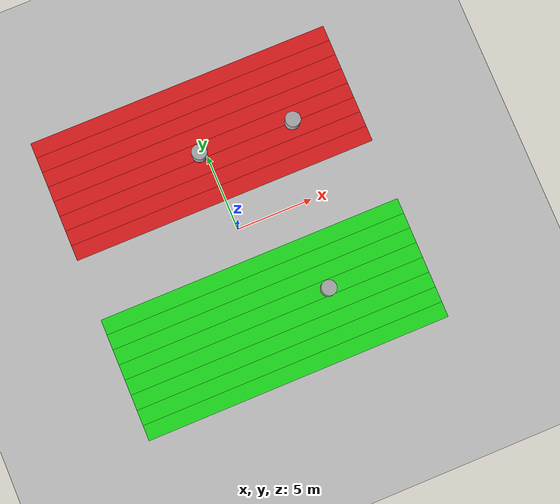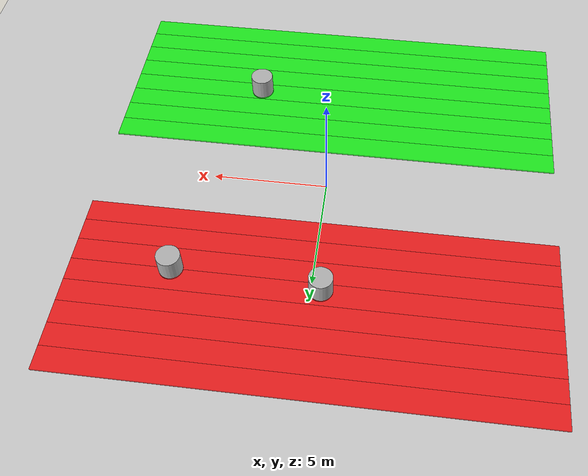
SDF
<sdf version="1.9">
 <world name="car_world">
  <physics name="1ms" type="ignored">
   <max_step_size>0.001</max_step_size>
   <real_time_factor>1</real_time_factor>
   <real_time_update_rate>1000</real_time_update_rate>
  </physics>
  <plugin name="ignition::gazebo::systems::Physics" filename="libignition-gazebo-physics-system.so"/>
  <plugin name="ignition::gazebo::systems::UserCommands" filename="libignition-gazebo-user-commands-system.so"/>
  <plugin name="ignition::gazebo::systems::SceneBroadcaster" filename="libignition-gazebo-scene-broadcaster-system.so"/>
  <gravity>0 0 -9.8</gravity>
  <magnetic_field>6e-06 2.3e-05 -4.2e-05</magnetic_field>
  <atmosphere type="adiabatic"/>
  <scene><ambient>0.4 0.4 0.4 1</ambient><background>0.7 0.7 0.7 1</background><shadows>true</shadows></scene>
  <model name="ground_plane">
   <static>true</static>
   <link name="link">
    <collision name="collision">
     <geometry><plane><normal>0 0 1</normal><size>1 1</size></plane></geometry>
    </collision>
    <visual name="visual">
     <geometry><plane><normal>0 0 1</normal><size>100 100</size></plane></geometry>
     <material>
      <ambient>0.8 0.8 0.8 1</ambient>
      <diffuse>0.8 0.8 0.8 1</diffuse>
      <specular>0.8 0.8 0.8 1</specular>
     </material>
    </visual>
    <inertial>
     <mass>1</mass>
     <inertia><ixx>1</ixx><ixy>0</ixy><ixz>0</ixz><iyy>1</iyy><iyz>0</iyz><izz>1</izz></inertia>
    </inertial>
   </link>
  </model>
  <model name="planks">
   <link name="plank-10">
    <pose>0 -9.5 0 0 -0 0</pose>
    <inertial>
     <mass>12000</mass>
     <inertia><ixx>1010</ixx><ixy>0</ixy><ixz>0</ixz><iyy>400010</iyy><iyz>0</iyz><izz>401000</izz></inertia>
    </inertial>
    <visual name="visual">
     <geometry><box><size>20 1 0.1</size></box></geometry>
     <material><ambient>0 1 0 0.8</ambient><diffuse>0 1 0 0.8</diffuse><specular>0 1 0 0.8</specular></material>
    </visual>
    <collision name="collision">
     <geometry><box><size>20 1 0.1</size></box></geometry>
     <surface><friction><ode><mu>100</mu><mu2>100</mu2></ode></friction></surface>
    </collision>
   </link>
   <link name="plank-9">
    <pose>0 -8.5 0 0 -0 0</pose>
    <inertial>
     <mass>12000</mass>
     <inertia><ixx>1010</ixx><ixy>0</ixy><ixz>0</ixz><iyy>400010</iyy><iyz>0</iyz><izz>401000</izz></inertia>
    </inertial>
    <visual name="visual">
     <geometry><box><size>20 1 0.1</size></box></geometry>
     <material><ambient>0 1 0 0.8</ambient><diffuse>0 1 0 0.8</diffuse><specular>0 1 0 0.8</specular></material>
    </visual>
    <collision name="collision">
     <geometry><box><size>20 1 0.1</size></box></geometry>
     <surface><friction><ode><mu>100</mu><mu2>100</mu2></ode></friction></surface>
    </collision>
   </link>
   <link name="plank-8">
    <pose>0 -7.5 0 0 -0 0</pose>
    <inertial>
     <mass>12000</mass>
     <inertia><ixx>1010</ixx><ixy>0</ixy><ixz>0</ixz><iyy>400010</iyy><iyz>0</iyz><izz>401000</izz></inertia>
    </inertial>
    <visual name="visual">
     <geometry><box><size>20 1 0.1</size></box></geometry>
     <material><ambient>0 1 0 0.8</ambient><diffuse>0 1 0 0.8</diffuse><specular>0 1 0 0.8</specular></material>
    </visual>
    <collision name="collision">
     <geometry><box><size>20 1 0.1</size></box></geometry>
     <surface><friction><ode><mu>100</mu><mu2>100</mu2></ode></friction></surface>
    </collision>
   </link>
   <link name="plank-7">
    <pose>0 -6.5 0 0 -0 0</pose>
    <inertial>
     <mass>12000</mass>
     <inertia><ixx>1010</ixx><ixy>0</ixy><ixz>0</ixz><iyy>400010</iyy><iyz>0</iyz><izz>401000</izz></inertia>
    </inertial>
    <visual name="visual">
     <geometry><box><size>20 1 0.1</size></box></geometry>
     <material><ambient>0 1 0 0.8</ambient><diffuse>0 1 0 0.8</diffuse><specular>0 1 0 0.8</specular></material>
    </visual>
    <collision name="collision">
     <geometry><box><size>20 1 0.1</size></box></geometry>
     <surface><friction><ode><mu>100</mu><mu2>100</mu2></ode></friction></surface>
    </collision>
   </link>
   <link name="plank-6">
    <pose>0 -5.5 0 0 -0 0</pose>
    <inertial>
     <mass>12000</mass>
     <inertia><ixx>1010</ixx><ixy>0</ixy><ixz>0</ixz><iyy>400010</iyy><iyz>0</iyz><izz>401000</izz></inertia>
    </inertial>
    <visual name="visual">
     <geometry><box><size>20 1 0.1</size></box></geometry>
     <material><ambient>0 1 0 0.8</ambient><diffuse>0 1 0 0.8</diffuse><specular>0 1 0 0.8</specular></material>
    </visual>
    <collision name="collision">
     <geometry><box><size>20 1 0.1</size></box></geometry>
     <surface><friction><ode><mu>100</mu><mu2>100</mu2></ode></friction></surface>
    </collision>
   </link>
   <link name="plank-5">
    <pose>0 -4.5 0 0 -0 0</pose>
    <inertial>
     <mass>12000</mass>
     <inertia><ixx>1010</ixx><ixy>0</ixy><ixz>0</ixz><iyy>400010</iyy><iyz>0</iyz><izz>401000</izz></inertia>
    </inertial>
    <visual name="visual">
     <geometry><box><size>20 1 0.1</size></box></geometry>
     <material><ambient>0 1 0 0.8</ambient><diffuse>0 1 0 0.8</diffuse><specular>0 1 0 0.8</specular></material>
    </visual>
    <collision name="collision">
     <geometry><box><size>20 1 0.1</size></box></geometry>
     <surface><friction><ode><mu>100</mu><mu2>100</mu2></ode></friction></surface>
    </collision>
   </link>
   <link name="plank-4">
    <pose>0 -3.5 0 0 -0 0</pose>
    <inertial>
     <mass>12000</mass>
     <inertia><ixx>1010</ixx><ixy>0</ixy><ixz>0</ixz><iyy>400010</iyy><iyz>0</iyz><izz>401000</izz></inertia>
    </inertial>
    <visual name="visual">
     <geometry><box><size>20 1 0.1</size></box></geometry>
     <material><ambient>0 1 0 0.8</ambient><diffuse>0 1 0 0.8</diffuse><specular>0 1 0 0.8</specular></material>
    </visual>
    <collision name="collision">
     <geometry><box><size>20 1 0.1</size></box></geometry>
     <surface><friction><ode><mu>100</mu><mu2>100</mu2></ode></friction></surface>
    </collision>
   </link>
   <link name="plank-3">
    <pose>0 -2.5 0 0 -0 0</pose>
    <inertial>
     <mass>12000</mass>
     <inertia><ixx>1010</ixx><ixy>0</ixy><ixz>0</ixz><iyy>400010</iyy><iyz>0</iyz><izz>401000</izz></inertia>
    </inertial>
    <visual name="visual">
     <geometry><box><size>20 1 0.1</size></box></geometry>
     <material><ambient>0 1 0 0.8</ambient><diffuse>0 1 0 0.8</diffuse><specular>0 1 0 0.8</specular></material>
    </visual>
    <collision name="collision">
     <geometry><box><size>20 1 0.1</size></box></geometry>
     <surface><friction><ode><mu>100</mu><mu2>100</mu2></ode></friction></surface>
    </collision>
   </link>
   <link name="plank3">
    <pose>0 2.5 0 0 -0 0</pose>
    <inertial>
     <mass>12000</mass>
     <inertia><ixx>1010</ixx><ixy>0</ixy><ixz>0</ixz><iyy>400010</iyy><iyz>0</iyz><izz>401000</izz></inertia>
    </inertial>
    <visual name="visual">
     <geometry><box><size>20 1 0.1</size></box></geometry>
     <material><ambient>1 0 0 0.8</ambient><diffuse>1 0 0 0.8</diffuse><specular>1 0 0 0.8</specular></material>
    </visual>
    <collision name="collision">
     <geometry><box><size>20 1 0.1</size></box></geometry>
     <surface><friction><ode><mu>50</mu><mu2>50</mu2></ode></friction></surface>
    </collision>
   </link>
   <link name="plank4">
    <pose>0 3.5 0 0 -0 0</pose>
    <inertial>
     <mass>12000</mass>
     <inertia><ixx>1010</ixx><ixy>0</ixy><ixz>0</ixz><iyy>400010</iyy><iyz>0</iyz><izz>401000</izz></inertia>
    </inertial>
    <visual name="visual">
     <geometry><box><size>20 1 0.1</size></box></geometry>
     <material><ambient>1 0 0 0.8</ambient><diffuse>1 0 0 0.8</diffuse><specular>1 0 0 0.8</specular></material>
    </visual>
    <collision name="collision">
     <geometry><box><size>20 1 0.1</size></box></geometry>
     <surface><friction><ode><mu>50</mu><mu2>50</mu2></ode></friction></surface>
    </collision>
   </link>
   <link name="plank5">
    <pose>0 4.5 0 0 -0 0</pose>
    <inertial>
     <mass>12000</mass>
     <inertia><ixx>1010</ixx><ixy>0</ixy><ixz>0</ixz><iyy>400010</iyy><iyz>0</iyz><izz>401000</izz></inertia>
    </inertial>
    <visual name="visual">
     <geometry><box><size>20 1 0.1</size></box></geometry>
     <material><ambient>1 0 0 0.8</ambient><diffuse>1 0 0 0.8</diffuse><specular>1 0 0 0.8</specular></material>
    </visual>
    <collision name="collision">
     <geometry><box><size>20 1 0.1</size></box></geometry>
     <surface><friction><ode><mu>50</mu><mu2>50</mu2></ode></friction></surface>
    </collision>
   </link>
   <link name="plank6">
    <pose>0 5.5 0 0 -0 0</pose>
    <inertial>
     <mass>12000</mass>
     <inertia><ixx>1010</ixx><ixy>0</ixy><ixz>0</ixz><iyy>400010</iyy><iyz>0</iyz><izz>401000</izz></inertia>
    </inertial>
    <visual name="visual">
     <geometry><box><size>20 1 0.1</size></box></geometry>
     <material><ambient>1 0 0 0.8</ambient><diffuse>1 0 0 0.8</diffuse><specular>1 0 0 0.8</specular></material>
    </visual>
    <collision name="collision">
     <geometry><box><size>20 1 0.1</size></box></geometry>
     <surface><friction><ode><mu>50</mu><mu2>50</mu2></ode></friction></surface>
    </collision>
   </link>
   <link name="plank7">
    <pose>0 6.5 0 0 -0 0</pose>
    <inertial>
     <mass>12000</mass>
     <inertia><ixx>1010</ixx><ixy>0</ixy><ixz>0</ixz><iyy>400010</iyy><iyz>0</iyz><izz>401000</izz></inertia>
    </inertial>
    <visual name="visual">
     <geometry><box><size>20 1 0.1</size></box></geometry>
     <material><ambient>1 0 0 0.8</ambient><diffuse>1 0 0 0.8</diffuse><specular>1 0 0 0.8</specular></material>
    </visual>
    <collision name="collision">
     <geometry><box><size>20 1 0.1</size></box></geometry>
     <surface><friction><ode><mu>50</mu><mu2>50</mu2></ode></friction></surface>
    </collision>
   </link>
   <link name="plank8">
    <pose>0 7.5 0 0 -0 0</pose>
    <inertial>
     <mass>12000</mass>
     <inertia><ixx>1010</ixx><ixy>0</ixy><ixz>0</ixz><iyy>400010</iyy><iyz>0</iyz><izz>401000</izz></inertia>
    </inertial>
    <visual name="visual">
     <geometry><box><size>20 1 0.1</size></box></geometry>
     <material><ambient>1 0 0 0.8</ambient><diffuse>1 0 0 0.8</diffuse><specular>1 0 0 0.8</specular></material>
    </visual>
    <collision name="collision">
     <geometry><box><size>20 1 0.1</size></box></geometry>
     <surface><friction><ode><mu>50</mu><mu2>50</mu2></ode></friction></surface>
    </collision>
   </link>
   <link name="plank9">
    <pose>0 8.5 0 0 -0 0</pose>
    <inertial>
     <mass>12000</mass>
     <inertia><ixx>1010</ixx><ixy>0</ixy><ixz>0</ixz><iyy>400010</iyy><iyz>0</iyz><izz>401000</izz></inertia>
    </inertial>
    <visual name="visual">
     <geometry><box><size>20 1 0.1</size></box></geometry>
     <material><ambient>1 0 0 0.8</ambient><diffuse>1 0 0 0.8</diffuse><specular>1 0 0 0.8</specular></material>
    </visual>
    <collision name="collision">
     <geometry><box><size>20 1 0.1</size></box></geometry>
     <surface><friction><ode><mu>50</mu><mu2>50</mu2></ode></friction></surface>
    </collision>
   </link>
   <link name="plank10">
    <pose>0 9.5 0 0 -0 0</pose>
    <inertial>
     <mass>12000</mass>
     <inertia><ixx>1010</ixx><ixy>0</ixy><ixz>0</ixz><iyy>400010</iyy><iyz>0</iyz><izz>401000</izz></inertia>
    </inertial>
    <visual name="visual">
     <geometry><box><size>20 1 0.1</size></box></geometry>
     <material><ambient>1 0 0 0.8</ambient><diffuse>1 0 0 0.8</diffuse><specular>1 0 0 0.8</specular></material>
    </visual>
    <collision name="collision">
     <geometry><box><size>20 1 0.1</size></box></geometry>
     <surface><friction><ode><mu>50</mu><mu2>50</mu2></ode></friction></surface>
    </collision>
   </link>
   <static>false</static>
  </model>
  <model name="cylinder">
   <pose>5.78817 5.00633 0.5 0 -0 0</pose>
   <link name="cylinder_link">
    <inertial>
     <inertia>
      <ixx>0.14580000000000001</ixx>
      <ixy>0</ixy>
      <ixz>0</ixz>
      <iyy>0.14580000000000001</iyy>
      <iyz>0</iyz>
      <izz>0.125</izz>
     </inertia>
     <mass>1</mass>
    </inertial>
    <collision name="cylinder_collision">
     <geometry><cylinder><radius>0.5</radius><length>1</length></cylinder></geometry>
    </collision>
    <visual name="cylinder_visual">
     <geometry><cylinder><radius>0.5</radius><length>1</length></cylinder></geometry>
     <material>
      <ambient>0.3 0.3 0.3 1</ambient>
      <diffuse>0.7 0.7 0.7 1</diffuse>
      <specular>1 1 1 1</specular>
     </material>
    </visual>
   </link>
   <static>false</static>
  </model>
  <model name="cylinder_0">
   <pose>3.78643 -5.56469 0.5 0 -0 0</pose>
   <link name="cylinder_link">
    <inertial>
     <inertia>
      <ixx>0.14580000000000001</ixx>
      <ixy>0</ixy>
      <ixz>0</ixz>
      <iyy>0.14580000000000001</iyy>
      <iyz>0</iyz>
      <izz>0.125</izz>
     </inertia>
     <mass>1</mass>
    </inertial>
    <collision name="cylinder_collision">
     <geometry><cylinder><radius>0.5</radius><length>1</length></cylinder></geometry>
    </collision>
    <visual name="cylinder_visual">
     <geometry><cylinder><radius>0.5</radius><length>1</length></cylinder></geometry>
     <material>
      <ambient>0.3 0.3 0.3 1</ambient>
      <diffuse>0.7 0.7 0.7 1</diffuse>
      <specular>1 1 1 1</specular>
     </material>
    </visual>
   </link>
   <static>false</static>
  </model>
  <model name="cylinder_1">
   <pose>-0.410043 5.30406 0.5 0 -0 0</pose>
   <link name="cylinder_link">
    <inertial>
     <inertia>
      <ixx>0.14580000000000001</ixx>
      <ixy>0</ixy>
      <ixz>0</ixz>
      <iyy>0.14580000000000001</iyy>
      <iyz>0</iyz>
      <izz>0.125</izz>
     </inertia>
     <mass>1</mass>
    </inertial>
    <collision name="cylinder_collision">
     <geometry><cylinder><radius>0.5</radius><length>1</length></cylinder></geometry>
    </collision>
    <visual name="cylinder_visual">
     <geometry><cylinder><radius>0.5</radius><length>1</length></cylinder></geometry>
     <material>
      <ambient>0.3 0.3 0.3 1</ambient>
      <diffuse>0.7 0.7 0.7 1</diffuse>
      <specular>1 1 1 1</specular>
     </material>
    </visual>
   </link>
   <static>false</static>
  </model>
  <light name="sun" type="directional">
   <pose>0 0 10 0 -0 0</pose>
   <intensity>1</intensity>
   <direction>-0.5 0.1 -0.9</direction>
   <diffuse>0.8 0.8 0.8 1</diffuse>
   <specular>0.2 0.2 0.2 1</specular>
   <attenuation>
    <range>1000</range>
    <linear>0.01</linear>
    <constant>0.90000000000000002</constant>
    <quadratic>0.001</quadratic>
   </attenuation>
   <spot><inner_angle>0</inner_angle><outer_angle>0</outer_angle><falloff>0</falloff></spot>
  </light>
 </world>
</sdf>
